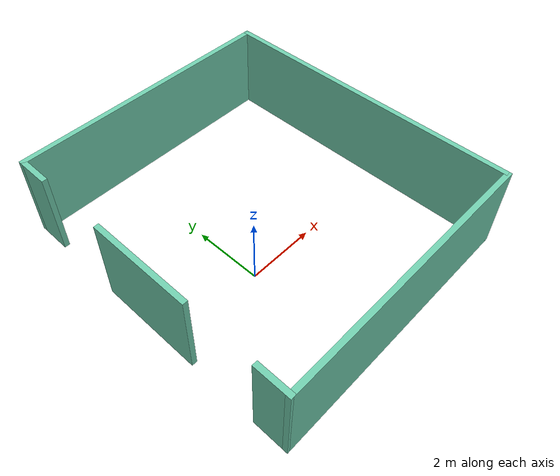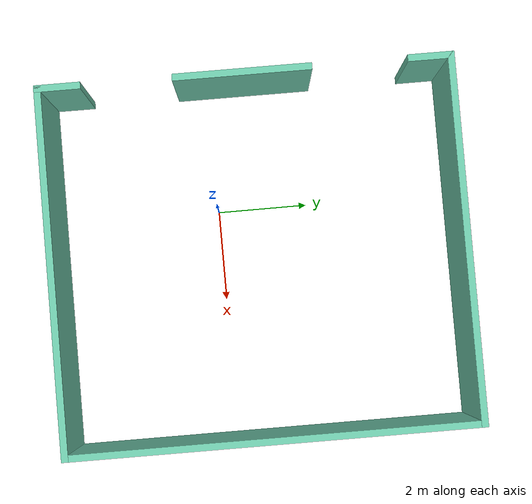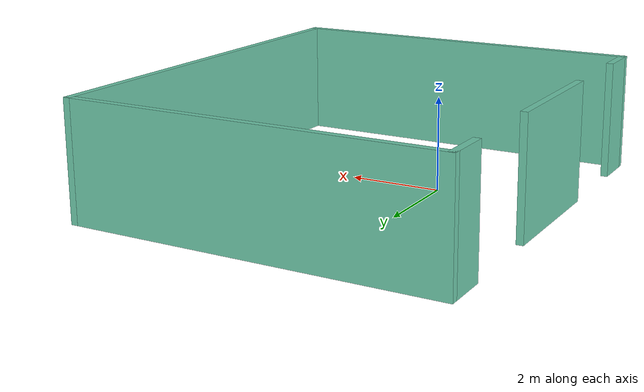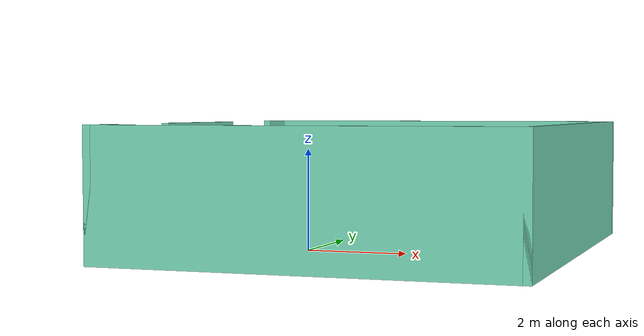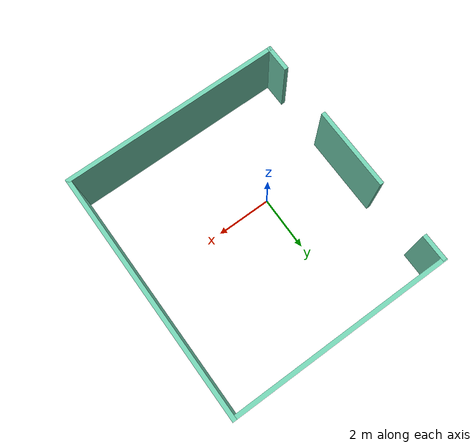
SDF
<?xml version='1.0'?>
<sdf version='1.7'>
  <model name='model.sdf'>
    <pose>1.19335 0.825 0 0 -0 0</pose>
    <link name='Wall_0'>
      <collision name='Wall_0_Collision'>
        <geometry>
          <box>
            <size>8 0.15 2.5</size>
          </box>
        </geometry>
        <pose>0 0 1.25 0 -0 0</pose>
      </collision>
      <visual name='Wall_0_Visual'>
        <pose>0 0 1.25 0 -0 0</pose>
        <geometry>
          <box>
            <size>8 0.15 2.5</size>
          </box>
        </geometry>
        <material>
          <script>
            <uri>file://media/materials/scripts/gazebo.material</uri>
            <name>Gazebo/Grey</name>
          </script>
          <ambient>0.435294 0.796078 0.67451 1</ambient>
        </material>
        <meta>
          <layer>0</layer>
        </meta>
      </visual>
      <pose>0.00165 -4.425 0 0 -0 0</pose>
    </link>
    <link name='Wall_1'>
      <collision name='Wall_1_Collision'>
        <geometry>
          <box>
            <size>9 0.15 2.5</size>
          </box>
        </geometry>
        <pose>0 0 1.25 0 -0 0</pose>
      </collision>
      <visual name='Wall_1_Visual'>
        <pose>0 0 1.25 0 -0 0</pose>
        <geometry>
          <box>
            <size>9 0.15 2.5</size>
          </box>
        </geometry>
        <material>
          <script>
            <uri>file://media/materials/scripts/gazebo.material</uri>
            <name>Gazebo/Grey</name>
          </script>
          <ambient>0.435294 0.796078 0.67451 1</ambient>
        </material>
        <meta>
          <layer>0</layer>
        </meta>
      </visual>
      <pose>3.92665 0 0 0 -0 1.5708</pose>
    </link>
    <link name='Wall_3'>
      <collision name='Wall_3_Collision'>
        <geometry>
          <box>
            <size>8 0.15 2.5</size>
          </box>
        </geometry>
        <pose>0 0 1.25 0 -0 0</pose>
      </collision>
      <visual name='Wall_3_Visual'>
        <pose>0 0 1.25 0 -0 0</pose>
        <geometry>
          <box>
            <size>8 0.15 2.5</size>
          </box>
        </geometry>
        <material>
          <script>
            <uri>file://media/materials/scripts/gazebo.material</uri>
            <name>Gazebo/Grey</name>
          </script>
          <ambient>0.435294 0.796078 0.67451 1</ambient>
        </material>
        <meta>
          <layer>0</layer>
        </meta>
      </visual>
      <pose>0.00165 4.425 0 0 -0 3.14159</pose>
    </link>
    <link name='Wall_4'>
      <collision name='Wall_4_Collision'>
        <geometry>
          <box>
            <size>1 0.15 2.5</size>
          </box>
        </geometry>
        <pose>0 0 1.25 0 -0 0</pose>
      </collision>
      <visual name='Wall_4_Visual'>
        <pose>0 0 1.25 0 -0 0</pose>
        <geometry>
          <box>
            <size>1 0.15 2.5</size>
          </box>
        </geometry>
        <material>
          <script>
            <uri>file://media/materials/scripts/gazebo.material</uri>
            <name>Gazebo/Grey</name>
          </script>
          <ambient>0.435294 0.796078 0.67451 1</ambient>
        </material>
        <meta>
          <layer>0</layer>
        </meta>
      </visual>
      <pose>-3.92335 4 0 0 -0 -1.5708</pose>
    </link>
    <link name='Wall_6'>
      <collision name='Wall_6_Collision'>
        <geometry>
          <box>
            <size>1 0.15 2.5</size>
          </box>
        </geometry>
        <pose>0 0 1.25 0 -0 0</pose>
      </collision>
      <visual name='Wall_6_Visual'>
        <pose>0 0 1.25 0 -0 0</pose>
        <geometry>
          <box>
            <size>1 0.15 2.5</size>
          </box>
        </geometry>
        <material>
          <script>
            <uri>file://media/materials/scripts/gazebo.material</uri>
            <name>Gazebo/Grey</name>
          </script>
          <ambient>0.435294 0.796078 0.67451 1</ambient>
        </material>
        <meta>
          <layer>0</layer>
        </meta>
      </visual>
      <pose>-3.92335 -4 0 0 -0 1.5708</pose>
    </link>
    <link name='Wall_9'>
      <collision name='Wall_9_Collision'>
        <geometry>
          <box>
            <size>3 0.15 2.5</size>
          </box>
        </geometry>
        <pose>0 0 1.25 0 -0 0</pose>
      </collision>
      <visual name='Wall_9_Visual'>
        <pose>0 0 1.25 0 -0 0</pose>
        <geometry>
          <box>
            <size>3 0.15 2.5</size>
          </box>
        </geometry>
        <material>
          <script>
            <uri>file://media/materials/scripts/gazebo.material</uri>
            <name>Gazebo/Grey</name>
          </script>
          <ambient>0.435294 0.796078 0.67451 1</ambient>
        </material>
        <meta>
          <layer>0</layer>
        </meta>
      </visual>
      <pose>-3.92665 -0.04515 0 0 -0 1.5708</pose>
    </link>
    <static>1</static>
  </model>
</sdf>
